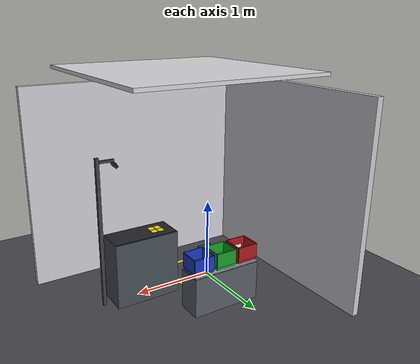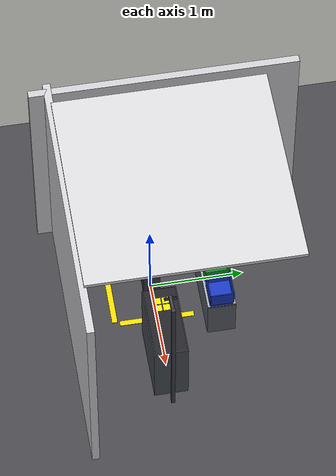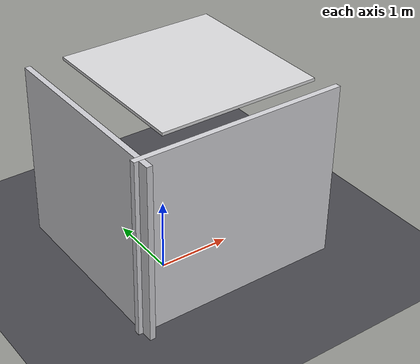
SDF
<?xml version="1.0"?>
<sdf version="1.6">
<world name="conveyor_cell">

  <plugin name="gazebo_ros_state" filename="libgazebo_ros_state.so">
    <ros>
      <namespace>/gazebo</namespace>
    </ros>
    <update_rate>30.0</update_rate>
  </plugin>

  <!-- ================================================================
       ILUMINAÇÃO — Célula industrial bem iluminada
       ================================================================ -->

  <!-- Luz direcional principal (simula LED overhead) -->
  <light name="overhead_main" type="directional">
    <cast_shadows>true</cast_shadows>
    <pose>0 0 4 0 0.1 0</pose>
    <diffuse>0.95 0.95 1.00 1</diffuse>
    <specular>0.40 0.40 0.40 1</specular>
    <direction>-0.1 0.1 -1.0</direction>
  </light>

  <!-- Luz de preenchimento (fill light) — elimina sombras duras -->
  <light name="fill_left" type="point">
    <pose>-0.5 0.8 2.2 0 0 0</pose>
    <diffuse>0.55 0.60 0.65 1</diffuse>
    <specular>0.10 0.10 0.12 1</specular>
    <attenuation>
      <range>4.5</range>
      <constant>0.20</constant>
      <linear>0.08</linear>
      <quadratic>0.01</quadratic>
    </attenuation>
  </light>

  <!-- Luz acima da área de classificação (bins) -->
  <light name="sort_area_light" type="point">
    <pose>0.25 0.65 2.0 0 0 0</pose>
    <diffuse>0.70 0.70 0.75 1</diffuse>
    <specular>0.20 0.20 0.20 1</specular>
    <attenuation>
      <range>2.5</range>
      <constant>0.15</constant>
      <linear>0.10</linear>
      <quadratic>0.02</quadratic>
    </attenuation>
  </light>

  <!-- Luz acima da pick station -->
  <light name="pick_station_light" type="point">
    <pose>0.75 0 2.1 0 0 0</pose>
    <diffuse>0.80 0.80 0.80 1</diffuse>
    <specular>0.30 0.30 0.30 1</specular>
    <attenuation>
      <range>2.0</range>
      <constant>0.20</constant>
      <linear>0.12</linear>
      <quadratic>0.02</quadratic>
    </attenuation>
  </light>

  <model name="ground_plane">
    <static>true</static>
    <link name="link">
      <collision name="collision">
        <geometry><plane><normal>0 0 1</normal><size>20 20</size></plane></geometry>
      </collision>
      <visual name="visual">
        <geometry><plane><normal>0 0 1</normal><size>20 20</size></plane></geometry>
        <material>
          <ambient>0.22 0.22 0.24 1</ambient>
          <diffuse>0.28 0.28 0.30 1</diffuse>
          <specular>0.05 0.05 0.05 1</specular>
        </material>
      </visual>
    </link>
  </model>

  <!-- Zona de segurança amarela — faixa frontal ao redor do robô -->
  <model name="safety_stripe_front">
    <static>true</static>
    <pose>0 -0.45 0.003 0 0 0</pose>
    <link name="link">
      <visual name="visual">
        <geometry><box><size>0.80 0.06 0.002</size></box></geometry>
        <material>
          <ambient>0.85 0.75 0.0 1</ambient>
          <diffuse>0.95 0.85 0.0 1</diffuse>
        </material>
      </visual>
    </link>
  </model>

  <!-- Zona de segurança amarela — faixa lateral esquerda -->
  <model name="safety_stripe_left">
    <static>true</static>
    <pose>-0.42 0 0.003 0 0 0</pose>
    <link name="link">
      <visual name="visual">
        <geometry><box><size>0.06 0.80 0.002</size></box></geometry>
        <material>
          <ambient>0.85 0.75 0.0 1</ambient>
          <diffuse>0.95 0.85 0.0 1</diffuse>
        </material>
      </visual>
    </link>
  </model>

  <!-- Zona de segurança amarela — faixa lateral direita -->
  <model name="safety_stripe_right">
    <static>true</static>
    <pose>0.42 0 0.003 0 0 0</pose>
    <link name="link">
      <visual name="visual">
        <geometry><box><size>0.06 0.80 0.002</size></box></geometry>
        <material>
          <ambient>0.85 0.75 0.0 1</ambient>
          <diffuse>0.95 0.85 0.0 1</diffuse>
        </material>
      </visual>
    </link>
  </model>

  <!-- ================================================================
       PAREDES DA CÉLULA — Ambiente fechado / semi-fechado
       ================================================================ -->

  <!-- Parede de fundo (y negativo) -->
  <model name="wall_back">
    <static>true</static>
    <pose>0.50 -0.90 1.25 0 0 0</pose>
    <link name="link">
      <collision name="collision">
        <geometry><box><size>3.0 0.08 2.50</size></box></geometry>
      </collision>
      <visual name="visual">
        <geometry><box><size>3.0 0.08 2.50</size></box></geometry>
        <material>
          <ambient>0.78 0.78 0.80 1</ambient>
          <diffuse>0.82 0.82 0.84 1</diffuse>
          <specular>0.05 0.05 0.05 1</specular>
        </material>
      </visual>
    </link>
  </model>

  <!-- Parede lateral esquerda (x negativo) -->
  <model name="wall_left">
    <static>true</static>
    <pose>-0.90 0.30 1.25 0 0 0</pose>
    <link name="link">
      <collision name="collision">
        <geometry><box><size>0.08 2.8 2.50</size></box></geometry>
      </collision>
      <visual name="visual">
        <geometry><box><size>0.08 2.8 2.50</size></box></geometry>
        <material>
          <ambient>0.75 0.75 0.78 1</ambient>
          <diffuse>0.80 0.80 0.82 1</diffuse>
        </material>
      </visual>
    </link>
  </model>

  <!-- Teto parcial (acima da área de trabalho) -->
  <model name="ceiling_partial">
    <static>true</static>
    <pose>0.50 0.20 2.70 0 0 0</pose>
    <link name="link">
      <visual name="visual">
        <geometry><box><size>2.20 2.20 0.04</size></box></geometry>
        <material>
          <ambient>0.80 0.80 0.82 1</ambient>
          <diffuse>0.85 0.85 0.86 1</diffuse>
        </material>
      </visual>
    </link>
  </model>

  <!-- Painéis LED embutidos no teto (visual) -->
  <model name="led_panel_1">
    <static>true</static>
    <pose>0.40 0.10 2.67 0 0 0</pose>
    <link name="link">
      <visual name="visual">
        <geometry><box><size>0.50 0.12 0.02</size></box></geometry>
        <material>
          <ambient>0.95 0.98 1.00 1</ambient>
          <diffuse>0.98 0.99 1.00 1</diffuse>
          <emissive>0.60 0.65 0.70 1</emissive>
        </material>
      </visual>
    </link>
  </model>

  <model name="led_panel_2">
    <static>true</static>
    <pose>0.40 0.65 2.67 0 0 0</pose>
    <link name="link">
      <visual name="visual">
        <geometry><box><size>0.50 0.12 0.02</size></box></geometry>
        <material>
          <ambient>0.95 0.98 1.00 1</ambient>
          <diffuse>0.98 0.99 1.00 1</diffuse>
          <emissive>0.60 0.65 0.70 1</emissive>
        </material>
      </visual>
    </link>
  </model>

  <!-- ================================================================
       PEDESTAL DO ROBÔ
       ================================================================ -->
  <model name="robot_pedestal">
    <static>true</static>
    <pose>0 0 0.1875 0 0 0</pose>
    <link name="link">
      <collision name="collision">
        <geometry><box><size>0.18 0.18 0.375</size></box></geometry>
      </collision>
      <visual name="visual">
        <geometry><box><size>0.18 0.18 0.375</size></box></geometry>
        <material>
          <ambient>0.18 0.18 0.20 1</ambient>
          <diffuse>0.22 0.22 0.26 1</diffuse>
          <specular>0.25 0.25 0.25 1</specular>
        </material>
      </visual>
    </link>
  </model>

  <!-- Estrutura da esteira -->
  <model name="belt_frame">
    <static>true</static>
    <pose>0.95 0 0.40 0 0 0</pose>
    <link name="link">
      <!-- sem colisão: estrutura visual apenas; colisão real nos pés (belt_leg) e guias -->
      <visual name="visual">
        <geometry><box><size>0.80 0.36 0.80</size></box></geometry>
        <material>
          <ambient>0.22 0.24 0.28 1</ambient>
          <diffuse>0.28 0.30 0.34 1</diffuse>
          <specular>0.20 0.20 0.20 1</specular>
        </material>
      </visual>
    </link>
  </model>

  <!-- Superfície da correia — textura escura antiderrapante -->
  <model name="belt_surface">
    <static>true</static>
    <pose>0.95 0 0.803 0 0 0</pose>
    <link name="link">
      <collision name="collision">
        <geometry><box><size>0.78 0.34 0.006</size></box></geometry>
        <surface>
          <friction>
            <ode><mu>1.0</mu><mu2>1.0</mu2></ode>
          </friction>
          <contact>
            <ode><max_vel>0.02</max_vel><min_depth>0.001</min_depth></ode>
          </contact>
        </surface>
      </collision>
      <visual name="visual">
        <geometry><box><size>0.78 0.34 0.006</size></box></geometry>
        <material>
          <ambient>0.10 0.10 0.12 1</ambient>
          <diffuse>0.14 0.14 0.16 1</diffuse>
          <specular>0.02 0.02 0.02 1</specular>
        </material>
      </visual>
    </link>
  </model>

  <!-- Marcação da pick station (quadrado amarelo) -->
  <model name="pick_station_marker">
    <static>true</static>
    <pose>0.75 0 0.808 0 0 0</pose>
    <link name="link">
      <visual name="visual">
        <geometry><box><size>0.16 0.16 0.001</size></box></geometry>
        <material>
          <ambient>1.0 0.88 0.0 1</ambient>
          <diffuse>1.0 0.90 0.0 1</diffuse>
          <emissive>0.20 0.18 0.0 1</emissive>
        </material>
      </visual>
    </link>
  </model>

  <!-- Cruz central da pick station -->
  <model name="pick_cross_h">
    <static>true</static>
    <pose>0.75 0 0.809 0 0 0</pose>
    <link name="link">
      <visual name="visual">
        <geometry><box><size>0.16 0.010 0.001</size></box></geometry>
        <material>
          <ambient>0.0 0.0 0.0 1</ambient><diffuse>0.05 0.05 0.05 1</diffuse>
        </material>
      </visual>
    </link>
  </model>
  <model name="pick_cross_v">
    <static>true</static>
    <pose>0.75 0 0.809 0 0 0</pose>
    <link name="link">
      <visual name="visual">
        <geometry><box><size>0.010 0.16 0.001</size></box></geometry>
        <material>
          <ambient>0.0 0.0 0.0 1</ambient><diffuse>0.05 0.05 0.05 1</diffuse>
        </material>
      </visual>
    </link>
  </model>

  <!-- Pés de suporte da esteira -->
  <model name="belt_leg_front">
    <static>true</static>
    <pose>0.65 0 0.20 0 0 0</pose>
    <link name="link">
      <collision name="collision">
        <geometry><box><size>0.05 0.30 0.40</size></box></geometry>
      </collision>
      <visual name="visual">
        <geometry><box><size>0.05 0.30 0.40</size></box></geometry>
        <material>
          <ambient>0.30 0.30 0.35 1</ambient><diffuse>0.35 0.35 0.40 1</diffuse>
        </material>
      </visual>
    </link>
  </model>

  <model name="belt_leg_back">
    <static>true</static>
    <pose>1.25 0 0.20 0 0 0</pose>
    <link name="link">
      <collision name="collision">
        <geometry><box><size>0.05 0.30 0.40</size></box></geometry>
      </collision>
      <visual name="visual">
        <geometry><box><size>0.05 0.30 0.40</size></box></geometry>
        <material>
          <ambient>0.30 0.30 0.35 1</ambient><diffuse>0.35 0.35 0.40 1</diffuse>
        </material>
      </visual>
    </link>
  </model>

  <!-- Coluna atrás da esteira (x=1.45), fora do alcance do braço -->
  <model name="camera_column">
    <static>true</static>
    <pose>1.45 0.0 0.90 0 0 0</pose>
    <link name="link">
      <collision name="collision">
        <geometry><box><size>0.04 0.04 1.80</size></box></geometry>
      </collision>
      <visual name="visual">
        <geometry><box><size>0.04 0.04 1.80</size></box></geometry>
        <material>
          <ambient>0.20 0.20 0.22 1</ambient>
          <diffuse>0.25 0.25 0.28 1</diffuse>
          <specular>0.30 0.30 0.30 1</specular>
        </material>
      </visual>
    </link>
  </model>

  <!-- Braço horizontal em X (da coluna em x=1.45 até câmera em x=1.25) -->
  <model name="camera_arm">
    <static>true</static>
    <pose>1.35 0.0 1.75 0 0 0</pose>
    <link name="link">
      <visual name="visual">
        <geometry><box><size>0.20 0.03 0.03</size></box></geometry>
        <material>
          <ambient>0.20 0.20 0.22 1</ambient>
          <diffuse>0.25 0.25 0.28 1</diffuse>
          <specular>0.30 0.30 0.30 1</specular>
        </material>
      </visual>
    </link>
  </model>

  <!-- Corpo da câmera — yaw=π para olhar de volta à pick station -->
  <model name="rgbd_camera">
    <static>true</static>
    <pose>1.25 0.0 1.70 0 1.05 3.1416</pose>
    <link name="camera_link">
      <visual name="body_visual">
        <geometry><box><size>0.06 0.12 0.030</size></box></geometry>
        <material>
          <ambient>0.08 0.08 0.10 1</ambient>
          <diffuse>0.10 0.10 0.12 1</diffuse>
          <specular>0.30 0.30 0.30 1</specular>
        </material>
      </visual>
      <!-- LED indicador (verde = câmera ativa) -->
      <visual name="led_indicator">
        <pose>0.025 -0.045 0.010 0 0 0</pose>
        <geometry><sphere><radius>0.004</radius></sphere></geometry>
        <material>
          <ambient>0.0 0.9 0.1 1</ambient>
          <diffuse>0.0 1.0 0.1 1</diffuse>
          <emissive>0.0 0.6 0.05 1</emissive>
        </material>
      </visual>

      <sensor name="rgb_camera" type="camera">
        <always_on>true</always_on>
        <update_rate>30</update_rate>
        <camera name="camera">
          <horizontal_fov>1.2217</horizontal_fov>
          <image>
            <width>848</width>
            <height>480</height>
            <format>R8G8B8</format>
          </image>
          <clip><near>0.1</near><far>3.0</far></clip>
          <noise>
            <type>gaussian</type><mean>0.0</mean><stddev>0.001</stddev>
          </noise>
        </camera>
        <plugin name="gazebo_ros_camera" filename="libgazebo_ros_camera.so">
          <ros><namespace>/camera</namespace></ros>
          <camera_name>color</camera_name>
          <frame_name>camera_link</frame_name>
        </plugin>
      </sensor>
    </link>
  </model>

  <model name="sort_shelf_body">
    <static>true</static>
    <pose>0.25 0.65 0.24 0 0 0</pose>
    <link name="link">
      <collision name="collision">
        <geometry><box><size>0.86 0.30 0.48</size></box></geometry>
      </collision>
      <visual name="visual">
        <geometry><box><size>0.86 0.30 0.48</size></box></geometry>
        <material>
          <ambient>0.30 0.32 0.35 1</ambient>
          <diffuse>0.35 0.37 0.40 1</diffuse>
          <specular>0.15 0.15 0.15 1</specular>
        </material>
      </visual>
    </link>
  </model>

  <!-- Tampa/superfície da prateleira -->
  <model name="sort_shelf_top">
    <static>true</static>
    <pose>0.25 0.65 0.493 0 0 0</pose>
    <link name="link">
      <collision name="collision">
        <geometry><box><size>0.86 0.30 0.014</size></box></geometry>
      </collision>
      <visual name="visual">
        <geometry><box><size>0.86 0.30 0.014</size></box></geometry>
        <material>
          <ambient>0.55 0.58 0.60 1</ambient>
          <diffuse>0.65 0.68 0.70 1</diffuse>
          <specular>0.40 0.40 0.40 1</specular>
        </material>
      </visual>
    </link>
  </model>

  <model name="bin_frasco">
    <static>true</static>
    <pose>-0.05 0.65 0.535 0 0 0</pose>
    <link name="link">
      <collision name="floor_col"><pose>0 0 0 0 0 0</pose>
        <geometry><box><size>0.26 0.24 0.07</size></box></geometry>
      </collision>
      <visual name="floor_vis"><pose>0 0 0 0 0 0</pose>
        <geometry><box><size>0.26 0.24 0.07</size></box></geometry>
        <material>
          <ambient>0.55 0.08 0.08 1</ambient><diffuse>0.68 0.10 0.10 1</diffuse>
          <specular>0.25 0.10 0.10 1</specular>
        </material>
      </visual>
      <!-- Paredes -->
      <collision name="wall_n_col"><pose>0 0.125 0.085 0 0 0</pose>
        <geometry><box><size>0.26 0.010 0.17</size></box></geometry>
      </collision>
      <visual name="wall_n_vis"><pose>0 0.125 0.085 0 0 0</pose>
        <geometry><box><size>0.26 0.010 0.17</size></box></geometry>
        <material><ambient>0.55 0.08 0.08 1</ambient><diffuse>0.68 0.10 0.10 1</diffuse></material>
      </visual>
      <collision name="wall_s_col"><pose>0 -0.125 0.085 0 0 0</pose>
        <geometry><box><size>0.26 0.010 0.17</size></box></geometry>
      </collision>
      <visual name="wall_s_vis"><pose>0 -0.125 0.085 0 0 0</pose>
        <geometry><box><size>0.26 0.010 0.17</size></box></geometry>
        <material><ambient>0.55 0.08 0.08 1</ambient><diffuse>0.68 0.10 0.10 1</diffuse></material>
      </visual>
      <collision name="wall_e_col"><pose>0.130 0 0.085 0 0 0</pose>
        <geometry><box><size>0.010 0.24 0.17</size></box></geometry>
      </collision>
      <visual name="wall_e_vis"><pose>0.130 0 0.085 0 0 0</pose>
        <geometry><box><size>0.010 0.24 0.17</size></box></geometry>
        <material><ambient>0.55 0.08 0.08 1</ambient><diffuse>0.68 0.10 0.10 1</diffuse></material>
      </visual>
      <collision name="wall_w_col"><pose>-0.130 0 0.085 0 0 0</pose>
        <geometry><box><size>0.010 0.24 0.17</size></box></geometry>
      </collision>
      <visual name="wall_w_vis"><pose>-0.130 0 0.085 0 0 0</pose>
        <geometry><box><size>0.010 0.24 0.17</size></box></geometry>
        <material><ambient>0.55 0.08 0.08 1</ambient><diffuse>0.68 0.10 0.10 1</diffuse></material>
      </visual>
    </link>
  </model>

  <!-- Etiqueta 1 (FRASCO) -->
  <model name="label_frasco">
    <static>true</static>
    <pose>-0.05 0.535 0.585 0 0 0</pose>
    <link name="link">
      <visual name="visual">
        <geometry><box><size>0.18 0.002 0.06</size></box></geometry>
        <material>
          <ambient>1.0 1.0 1.0 1</ambient><diffuse>1.0 1.0 1.0 1</diffuse>
        </material>
      </visual>
    </link>
  </model>

  <!-- ================================================================
       CAIXA 2 — Tubo (claw_grip) | VERDE | x=0.25, y=0.65
       ================================================================ -->
  <model name="bin_tubo">
    <static>true</static>
    <pose>0.25 0.65 0.535 0 0 0</pose>
    <link name="link">
      <collision name="floor_col"><pose>0 0 0 0 0 0</pose>
        <geometry><box><size>0.26 0.24 0.07</size></box></geometry>
      </collision>
      <visual name="floor_vis"><pose>0 0 0 0 0 0</pose>
        <geometry><box><size>0.26 0.24 0.07</size></box></geometry>
        <material>
          <ambient>0.08 0.50 0.12 1</ambient><diffuse>0.10 0.62 0.15 1</diffuse>
          <specular>0.10 0.25 0.10 1</specular>
        </material>
      </visual>
      <collision name="wall_n_col"><pose>0 0.125 0.085 0 0 0</pose>
        <geometry><box><size>0.26 0.010 0.17</size></box></geometry>
      </collision>
      <visual name="wall_n_vis"><pose>0 0.125 0.085 0 0 0</pose>
        <geometry><box><size>0.26 0.010 0.17</size></box></geometry>
        <material><ambient>0.08 0.50 0.12 1</ambient><diffuse>0.10 0.62 0.15 1</diffuse></material>
      </visual>
      <collision name="wall_s_col"><pose>0 -0.125 0.085 0 0 0</pose>
        <geometry><box><size>0.26 0.010 0.17</size></box></geometry>
      </collision>
      <visual name="wall_s_vis"><pose>0 -0.125 0.085 0 0 0</pose>
        <geometry><box><size>0.26 0.010 0.17</size></box></geometry>
        <material><ambient>0.08 0.50 0.12 1</ambient><diffuse>0.10 0.62 0.15 1</diffuse></material>
      </visual>
      <collision name="wall_e_col"><pose>0.130 0 0.085 0 0 0</pose>
        <geometry><box><size>0.010 0.24 0.17</size></box></geometry>
      </collision>
      <visual name="wall_e_vis"><pose>0.130 0 0.085 0 0 0</pose>
        <geometry><box><size>0.010 0.24 0.17</size></box></geometry>
        <material><ambient>0.08 0.50 0.12 1</ambient><diffuse>0.10 0.62 0.15 1</diffuse></material>
      </visual>
      <collision name="wall_w_col"><pose>-0.130 0 0.085 0 0 0</pose>
        <geometry><box><size>0.010 0.24 0.17</size></box></geometry>
      </collision>
      <visual name="wall_w_vis"><pose>-0.130 0 0.085 0 0 0</pose>
        <geometry><box><size>0.010 0.24 0.17</size></box></geometry>
        <material><ambient>0.08 0.50 0.12 1</ambient><diffuse>0.10 0.62 0.15 1</diffuse></material>
      </visual>
    </link>
  </model>

  <model name="bin_ampola">
    <static>true</static>
    <pose>0.55 0.65 0.535 0 0 0</pose>
    <link name="link">
      <collision name="floor_col"><pose>0 0 0 0 0 0</pose>
        <geometry><box><size>0.26 0.24 0.07</size></box></geometry>
      </collision>
      <visual name="floor_vis"><pose>0 0 0 0 0 0</pose>
        <geometry><box><size>0.26 0.24 0.07</size></box></geometry>
        <material>
          <ambient>0.08 0.18 0.60 1</ambient><diffuse>0.10 0.22 0.75 1</diffuse>
          <specular>0.10 0.15 0.35 1</specular>
        </material>
      </visual>
      <collision name="wall_n_col"><pose>0 0.125 0.085 0 0 0</pose>
        <geometry><box><size>0.26 0.010 0.17</size></box></geometry>
      </collision>
      <visual name="wall_n_vis"><pose>0 0.125 0.085 0 0 0</pose>
        <geometry><box><size>0.26 0.010 0.17</size></box></geometry>
        <material><ambient>0.08 0.18 0.60 1</ambient><diffuse>0.10 0.22 0.75 1</diffuse></material>
      </visual>
      <collision name="wall_s_col"><pose>0 -0.125 0.085 0 0 0</pose>
        <geometry><box><size>0.26 0.010 0.17</size></box></geometry>
      </collision>
      <visual name="wall_s_vis"><pose>0 -0.125 0.085 0 0 0</pose>
        <geometry><box><size>0.26 0.010 0.17</size></box></geometry>
        <material><ambient>0.08 0.18 0.60 1</ambient><diffuse>0.10 0.22 0.75 1</diffuse></material>
      </visual>
      <collision name="wall_e_col"><pose>0.130 0 0.085 0 0 0</pose>
        <geometry><box><size>0.010 0.24 0.17</size></box></geometry>
      </collision>
      <visual name="wall_e_vis"><pose>0.130 0 0.085 0 0 0</pose>
        <geometry><box><size>0.010 0.24 0.17</size></box></geometry>
        <material><ambient>0.08 0.18 0.60 1</ambient><diffuse>0.10 0.22 0.75 1</diffuse></material>
      </visual>
      <collision name="wall_w_col"><pose>-0.130 0 0.085 0 0 0</pose>
        <geometry><box><size>0.010 0.24 0.17</size></box></geometry>
      </collision>
      <visual name="wall_w_vis"><pose>-0.130 0 0.085 0 0 0</pose>
        <geometry><box><size>0.010 0.24 0.17</size></box></geometry>
        <material><ambient>0.08 0.18 0.60 1</ambient><diffuse>0.10 0.22 0.75 1</diffuse></material>
      </visual>
    </link>
  </model>

  <!-- ================================================================
       FÍSICA
       ================================================================ -->
  <physics name="default_physics" default="true" type="ode">
    <max_step_size>0.001</max_step_size>
    <real_time_factor>1.0</real_time_factor>
    <real_time_update_rate>1000</real_time_update_rate>
    <gravity>0 0 -9.81</gravity>
    <ode>
      <solver><type>quick</type><iters>150</iters><sor>1.3</sor></solver>
      <constraints>
        <cfm>1e-6</cfm><erp>0.2</erp>
        <contact_max_correcting_vel>0.1</contact_max_correcting_vel>
        <contact_surface_layer>0.001</contact_surface_layer>
      </constraints>
    </ode>
  </physics>

</world>
</sdf>
